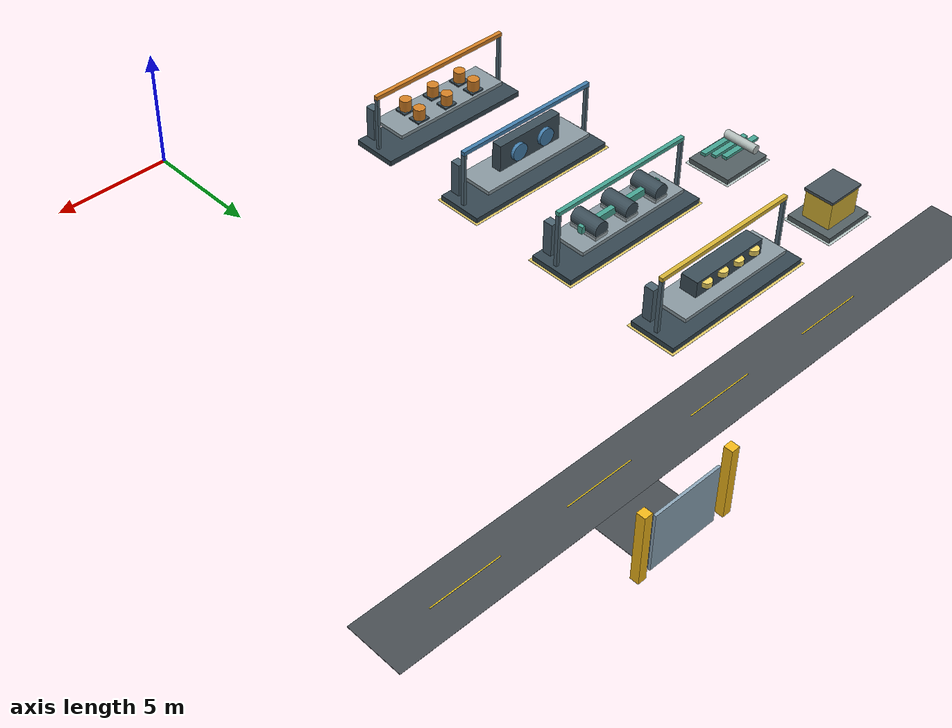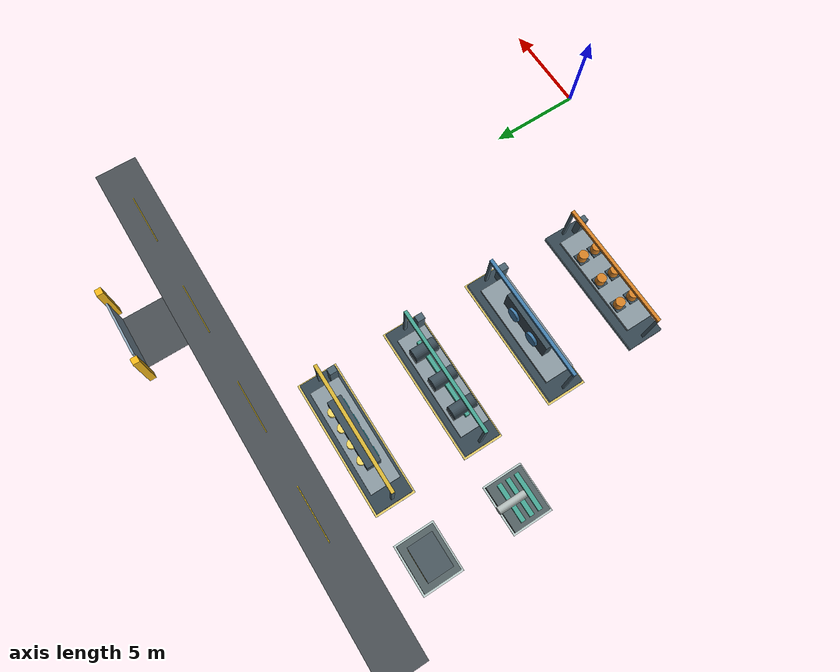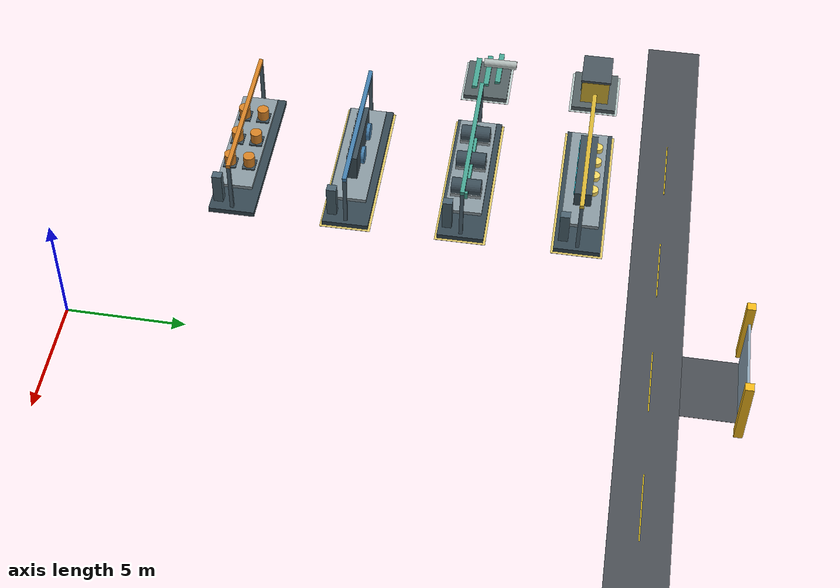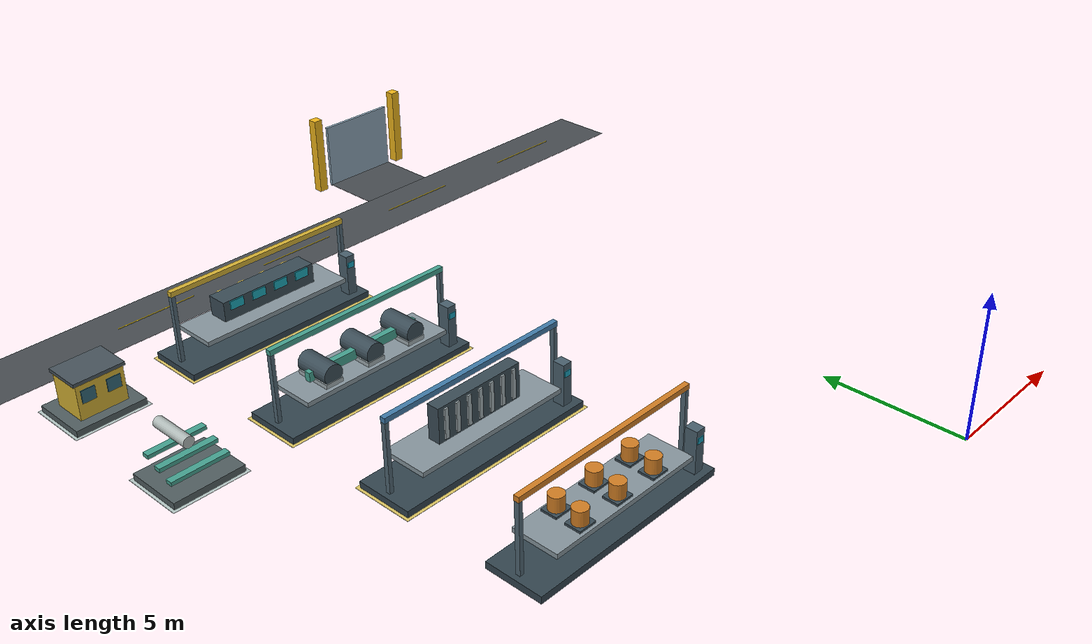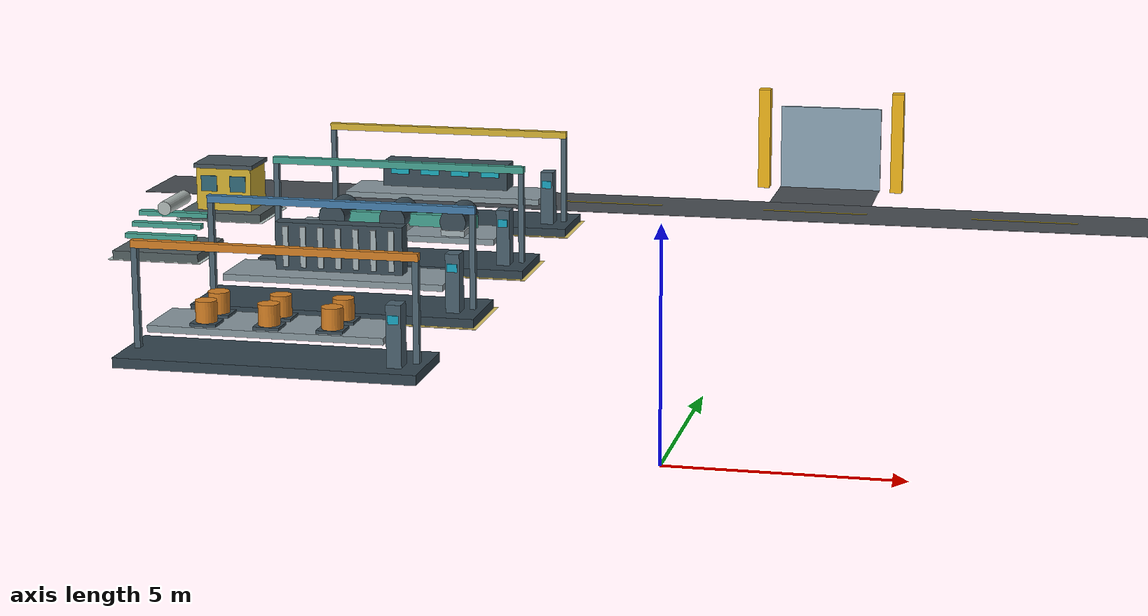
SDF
<sdf version="1.7">
 <world name="warehouse_layout_demo">
  <include><uri>model://sun</uri></include>
  <model name="north_access_road">
   <static>true</static>
   <pose>0.0 24.0 0.025 0 0 0</pose>
   <link name="marking">
    <visual name="visual">
     <geometry><box><size>90.0 2.4 0.012</size></box></geometry>
     <material><ambient>0.28 0.30 0.32 1</ambient><diffuse>0.28 0.30 0.32 1</diffuse></material>
    </visual>
   </link>
  </model>
  <model name="north_gate_approach">
   <static>true</static>
   <pose>0.0 26.35 0.025 0 0 0</pose>
   <link name="marking">
    <visual name="visual">
     <geometry><box><size>3.0 2.3 0.012</size></box></geometry>
     <material><ambient>0.28 0.30 0.32 1</ambient><diffuse>0.28 0.30 0.32 1</diffuse></material>
    </visual>
   </link>
  </model>
  <model name="north_gate_west_post">
   <static>true</static>
   <pose>-2.0 27.5 1.5 0 0 0</pose>
   <link name="link">
    <collision name="collision">
     <geometry><box><size>0.35 0.35 3.0</size></box></geometry>
     <surface><friction><ode><mu>0.9</mu><mu2>0.9</mu2></ode></friction></surface>
    </collision>
    <visual name="visual">
     <geometry><box><size>0.35 0.35 3.0</size></box></geometry>
     <material><ambient>0.95 0.72 0.10 1</ambient><diffuse>0.95 0.72 0.10 1</diffuse></material>
    </visual>
   </link>
  </model>
  <model name="north_gate_east_post">
   <static>true</static>
   <pose>2.0 27.5 1.5 0 0 0</pose>
   <link name="link">
    <collision name="collision">
     <geometry><box><size>0.35 0.35 3.0</size></box></geometry>
     <surface><friction><ode><mu>0.9</mu><mu2>0.9</mu2></ode></friction></surface>
    </collision>
    <visual name="visual">
     <geometry><box><size>0.35 0.35 3.0</size></box></geometry>
     <material><ambient>0.95 0.72 0.10 1</ambient><diffuse>0.95 0.72 0.10 1</diffuse></material>
    </visual>
   </link>
  </model>
  <model name="warehouse_north_gate">
   <static>false</static>
   <pose>0.0 27.5 1.25 0 0 0</pose>
   <link name="panel">
    <kinematic>true</kinematic>
    <gravity>false</gravity>
    <inertial>
     <mass>100.0</mass>
     <inertia><ixx>100.0</ixx><iyy>100.0</iyy><izz>100.0</izz><ixy>0</ixy><ixz>0</ixz><iyz>0</iyz></inertia>
    </inertial>
    <collision name="collision"><geometry><box><size>3.0 0.105 2.5</size></box></geometry></collision>
    <visual name="visual">
     <geometry><box><size>3.0 0.105 2.5</size></box></geometry>
     <material><ambient>0.55 0.65 0.72 1</ambient><diffuse>0.55 0.65 0.72 1</diffuse></material>
    </visual>
   </link>
  </model>
  <model name="part_stage_3_line_1_nw">
   <static>true</static>
   <pose>-10.0 5.5 0 0 0 0</pose>
   <link name="fixture">
    <collision name="collision">
     <pose>0 0 1.4 0 0 0</pose>
     <geometry><box><size>7.2 2.0 2.8</size></box></geometry>
    </collision>
    <visual name="machine_base">
     <pose>0 0 0.12 0 0 0</pose>
     <geometry><box><size>7.2 2.0 0.24</size></box></geometry>
     <material><ambient>0.20 0.27 0.31 1</ambient><diffuse>0.20 0.27 0.31 1</diffuse></material>
    </visual>
    <visual name="work_table">
     <pose>0 0 0.92 0 0 0</pose>
     <geometry><box><size>5.6 1.6 0.16</size></box></geometry>
     <material><ambient>0.53 0.59 0.62 1</ambient><diffuse>0.53 0.59 0.62 1</diffuse></material>
    </visual>
    <visual name="controller">
     <pose>3.05 -0.63 1.06 0 0 0</pose>
     <geometry><box><size>0.35 0.42 1.46</size></box></geometry>
     <material><ambient>0.29 0.38 0.43 1</ambient><diffuse>0.29 0.38 0.43 1</diffuse></material>
    </visual>
    <visual name="control_screen">
     <pose>3.05 -0.85 1.45 0 0 0</pose>
     <geometry><box><size>0.25 0.02 0.2</size></box></geometry>
     <material><ambient>0.09 0.64 0.75 1</ambient><diffuse>0.09 0.64 0.75 1</diffuse></material>
    </visual>
    <visual name="hoist_post_0">
     <pose>-3.35 0 1.4 0 0 0</pose>
     <geometry><box><size>0.14 0.16 2.72</size></box></geometry>
     <material><ambient>0.31 0.40 0.45 1</ambient><diffuse>0.31 0.40 0.45 1</diffuse></material>
    </visual>
    <visual name="hoist_post_1">
     <pose>3.35 0 1.4 0 0 0</pose>
     <geometry><box><size>0.14 0.16 2.72</size></box></geometry>
     <material><ambient>0.31 0.40 0.45 1</ambient><diffuse>0.31 0.40 0.45 1</diffuse></material>
    </visual>
    <visual name="hoist_beam">
     <pose>0 0 2.71 0 0 0</pose>
     <geometry><box><size>6.85 0.18 0.18</size></box></geometry>
     <material><ambient>0.83 0.50 0.14 1</ambient><diffuse>0.83 0.50 0.14 1</diffuse></material>
    </visual>
    <visual name="coil_0_0">
     <pose>-1.5 -0.42 1.24 0.0 0 0</pose>
     <geometry><cylinder><radius>0.25</radius><length>0.66</length></cylinder></geometry>
     <material><ambient>0.83 0.50 0.14 1</ambient><diffuse>0.83 0.50 0.14 1</diffuse></material>
    </visual>
    <visual name="spring_foot_0_0">
     <pose>-1.5 -0.42 1.02 0 0 0</pose>
     <geometry><box><size>0.62 0.56 0.1</size></box></geometry>
     <material><ambient>0.23 0.30 0.34 1</ambient><diffuse>0.23 0.30 0.34 1</diffuse></material>
    </visual>
    <visual name="coil_0_1">
     <pose>-1.5 0.42 1.24 0.0 0 0</pose>
     <geometry><cylinder><radius>0.25</radius><length>0.66</length></cylinder></geometry>
     <material><ambient>0.83 0.50 0.14 1</ambient><diffuse>0.83 0.50 0.14 1</diffuse></material>
    </visual>
    <visual name="spring_foot_0_1">
     <pose>-1.5 0.42 1.02 0 0 0</pose>
     <geometry><box><size>0.62 0.56 0.1</size></box></geometry>
     <material><ambient>0.23 0.30 0.34 1</ambient><diffuse>0.23 0.30 0.34 1</diffuse></material>
    </visual>
    <visual name="coil_1_0">
     <pose>0 -0.42 1.24 0.0 0 0</pose>
     <geometry><cylinder><radius>0.25</radius><length>0.66</length></cylinder></geometry>
     <material><ambient>0.83 0.50 0.14 1</ambient><diffuse>0.83 0.50 0.14 1</diffuse></material>
    </visual>
    <visual name="spring_foot_1_0">
     <pose>0 -0.42 1.02 0 0 0</pose>
     <geometry><box><size>0.62 0.56 0.1</size></box></geometry>
     <material><ambient>0.23 0.30 0.34 1</ambient><diffuse>0.23 0.30 0.34 1</diffuse></material>
    </visual>
    <visual name="coil_1_1">
     <pose>0 0.42 1.24 0.0 0 0</pose>
     <geometry><cylinder><radius>0.25</radius><length>0.66</length></cylinder></geometry>
     <material><ambient>0.83 0.50 0.14 1</ambient><diffuse>0.83 0.50 0.14 1</diffuse></material>
    </visual>
    <visual name="spring_foot_1_1">
     <pose>0 0.42 1.02 0 0 0</pose>
     <geometry><box><size>0.62 0.56 0.1</size></box></geometry>
     <material><ambient>0.23 0.30 0.34 1</ambient><diffuse>0.23 0.30 0.34 1</diffuse></material>
    </visual>
    <visual name="coil_2_0">
     <pose>1.5 -0.42 1.24 0.0 0 0</pose>
     <geometry><cylinder><radius>0.25</radius><length>0.66</length></cylinder></geometry>
     <material><ambient>0.83 0.50 0.14 1</ambient><diffuse>0.83 0.50 0.14 1</diffuse></material>
    </visual>
    <visual name="spring_foot_2_0">
     <pose>1.5 -0.42 1.02 0 0 0</pose>
     <geometry><box><size>0.62 0.56 0.1</size></box></geometry>
     <material><ambient>0.23 0.30 0.34 1</ambient><diffuse>0.23 0.30 0.34 1</diffuse></material>
    </visual>
    <visual name="coil_2_1">
     <pose>1.5 0.42 1.24 0.0 0 0</pose>
     <geometry><cylinder><radius>0.25</radius><length>0.66</length></cylinder></geometry>
     <material><ambient>0.83 0.50 0.14 1</ambient><diffuse>0.83 0.50 0.14 1</diffuse></material>
    </visual>
    <visual name="spring_foot_2_1">
     <pose>1.5 0.42 1.02 0 0 0</pose>
     <geometry><box><size>0.62 0.56 0.1</size></box></geometry>
     <material><ambient>0.23 0.30 0.34 1</ambient><diffuse>0.23 0.30 0.34 1</diffuse></material>
    </visual>
   </link>
  </model>
  <model name="part_stage_3_line_2_nw_pad">
   <static>true</static>
   <pose>-10.0 10.5 0.012 0 0 0</pose>
   <link name="marking">
    <visual name="visual">
     <geometry><box><size>7.4 2.2 0.012</size></box></geometry>
     <material><ambient>0.87 0.78 0.39 1</ambient><diffuse>0.87 0.78 0.39 1</diffuse></material>
    </visual>
   </link>
  </model>
  <model name="part_stage_3_line_2_nw">
   <static>true</static>
   <pose>-10.0 10.5 0 0 0 0</pose>
   <link name="fixture">
    <collision name="collision">
     <pose>0 0 1.4 0 0 0</pose>
     <geometry><box><size>7.2 2.0 2.8</size></box></geometry>
    </collision>
    <visual name="machine_base">
     <pose>0 0 0.12 0 0 0</pose>
     <geometry><box><size>7.2 2.0 0.24</size></box></geometry>
     <material><ambient>0.20 0.27 0.31 1</ambient><diffuse>0.20 0.27 0.31 1</diffuse></material>
    </visual>
    <visual name="work_table">
     <pose>0 0 0.92 0 0 0</pose>
     <geometry><box><size>5.6 1.6 0.16</size></box></geometry>
     <material><ambient>0.53 0.59 0.62 1</ambient><diffuse>0.53 0.59 0.62 1</diffuse></material>
    </visual>
    <visual name="controller">
     <pose>3.05 -0.63 1.06 0 0 0</pose>
     <geometry><box><size>0.35 0.42 1.46</size></box></geometry>
     <material><ambient>0.29 0.38 0.43 1</ambient><diffuse>0.29 0.38 0.43 1</diffuse></material>
    </visual>
    <visual name="control_screen">
     <pose>3.05 -0.85 1.45 0 0 0</pose>
     <geometry><box><size>0.25 0.02 0.2</size></box></geometry>
     <material><ambient>0.09 0.64 0.75 1</ambient><diffuse>0.09 0.64 0.75 1</diffuse></material>
    </visual>
    <visual name="hoist_post_0">
     <pose>-3.35 0 1.4 0 0 0</pose>
     <geometry><box><size>0.14 0.16 2.72</size></box></geometry>
     <material><ambient>0.31 0.40 0.45 1</ambient><diffuse>0.31 0.40 0.45 1</diffuse></material>
    </visual>
    <visual name="hoist_post_1">
     <pose>3.35 0 1.4 0 0 0</pose>
     <geometry><box><size>0.14 0.16 2.72</size></box></geometry>
     <material><ambient>0.31 0.40 0.45 1</ambient><diffuse>0.31 0.40 0.45 1</diffuse></material>
    </visual>
    <visual name="hoist_beam">
     <pose>0 0 2.71 0 0 0</pose>
     <geometry><box><size>6.85 0.18 0.18</size></box></geometry>
     <material><ambient>0.26 0.49 0.67 1</ambient><diffuse>0.26 0.49 0.67 1</diffuse></material>
    </visual>
    <visual name="radiator_frame">
     <pose>0 0 1.64 0 0 0</pose>
     <geometry><box><size>3.25 0.44 1.2</size></box></geometry>
     <material><ambient>0.23 0.30 0.34 1</ambient><diffuse>0.23 0.30 0.34 1</diffuse></material>
    </visual>
    <visual name="cooling_fin_0">
     <pose>-1.35 -0.25 1.64 0 0 0</pose>
     <geometry><box><size>0.14 0.05 1.02</size></box></geometry>
     <material><ambient>0.64 0.69 0.71 1</ambient><diffuse>0.64 0.69 0.71 1</diffuse></material>
    </visual>
    <visual name="cooling_fin_1">
     <pose>-0.9 -0.25 1.64 0 0 0</pose>
     <geometry><box><size>0.14 0.05 1.02</size></box></geometry>
     <material><ambient>0.64 0.69 0.71 1</ambient><diffuse>0.64 0.69 0.71 1</diffuse></material>
    </visual>
    <visual name="cooling_fin_2">
     <pose>-0.45 -0.25 1.64 0 0 0</pose>
     <geometry><box><size>0.14 0.05 1.02</size></box></geometry>
     <material><ambient>0.64 0.69 0.71 1</ambient><diffuse>0.64 0.69 0.71 1</diffuse></material>
    </visual>
    <visual name="cooling_fin_3">
     <pose>0 -0.25 1.64 0 0 0</pose>
     <geometry><box><size>0.14 0.05 1.02</size></box></geometry>
     <material><ambient>0.64 0.69 0.71 1</ambient><diffuse>0.64 0.69 0.71 1</diffuse></material>
    </visual>
    <visual name="cooling_fin_4">
     <pose>0.45 -0.25 1.64 0 0 0</pose>
     <geometry><box><size>0.14 0.05 1.02</size></box></geometry>
     <material><ambient>0.64 0.69 0.71 1</ambient><diffuse>0.64 0.69 0.71 1</diffuse></material>
    </visual>
    <visual name="cooling_fin_5">
     <pose>0.9 -0.25 1.64 0 0 0</pose>
     <geometry><box><size>0.14 0.05 1.02</size></box></geometry>
     <material><ambient>0.64 0.69 0.71 1</ambient><diffuse>0.64 0.69 0.71 1</diffuse></material>
    </visual>
    <visual name="cooling_fin_6">
     <pose>1.35 -0.25 1.64 0 0 0</pose>
     <geometry><box><size>0.14 0.05 1.02</size></box></geometry>
     <material><ambient>0.64 0.69 0.71 1</ambient><diffuse>0.64 0.69 0.71 1</diffuse></material>
    </visual>
    <visual name="cooling_fan_0">
     <pose>-0.73 0.35 1.65 1.57079632679 0 0</pose>
     <geometry><cylinder><radius>0.38</radius><length>0.15</length></cylinder></geometry>
     <material><ambient>0.26 0.49 0.67 1</ambient><diffuse>0.26 0.49 0.67 1</diffuse></material>
    </visual>
    <visual name="cooling_fan_1">
     <pose>0.73 0.35 1.65 1.57079632679 0 0</pose>
     <geometry><cylinder><radius>0.38</radius><length>0.15</length></cylinder></geometry>
     <material><ambient>0.26 0.49 0.67 1</ambient><diffuse>0.26 0.49 0.67 1</diffuse></material>
    </visual>
   </link>
  </model>
  <model name="part_stage_3_line_3_nw_pad">
   <static>true</static>
   <pose>-10.0 15.5 0.012 0 0 0</pose>
   <link name="marking">
    <visual name="visual">
     <geometry><box><size>7.4 2.2 0.012</size></box></geometry>
     <material><ambient>0.87 0.78 0.39 1</ambient><diffuse>0.87 0.78 0.39 1</diffuse></material>
    </visual>
   </link>
  </model>
  <model name="part_stage_3_line_3_nw">
   <static>true</static>
   <pose>-10.0 15.5 0 0 0 0</pose>
   <link name="fixture">
    <collision name="collision">
     <pose>0 0 1.4 0 0 0</pose>
     <geometry><box><size>7.2 2.0 2.8</size></box></geometry>
    </collision>
    <visual name="machine_base">
     <pose>0 0 0.12 0 0 0</pose>
     <geometry><box><size>7.2 2.0 0.24</size></box></geometry>
     <material><ambient>0.20 0.27 0.31 1</ambient><diffuse>0.20 0.27 0.31 1</diffuse></material>
    </visual>
    <visual name="work_table">
     <pose>0 0 0.92 0 0 0</pose>
     <geometry><box><size>5.6 1.6 0.16</size></box></geometry>
     <material><ambient>0.53 0.59 0.62 1</ambient><diffuse>0.53 0.59 0.62 1</diffuse></material>
    </visual>
    <visual name="controller">
     <pose>3.05 -0.63 1.06 0 0 0</pose>
     <geometry><box><size>0.35 0.42 1.46</size></box></geometry>
     <material><ambient>0.29 0.38 0.43 1</ambient><diffuse>0.29 0.38 0.43 1</diffuse></material>
    </visual>
    <visual name="control_screen">
     <pose>3.05 -0.85 1.45 0 0 0</pose>
     <geometry><box><size>0.25 0.02 0.2</size></box></geometry>
     <material><ambient>0.09 0.64 0.75 1</ambient><diffuse>0.09 0.64 0.75 1</diffuse></material>
    </visual>
    <visual name="hoist_post_0">
     <pose>-3.35 0 1.4 0 0 0</pose>
     <geometry><box><size>0.14 0.16 2.72</size></box></geometry>
     <material><ambient>0.31 0.40 0.45 1</ambient><diffuse>0.31 0.40 0.45 1</diffuse></material>
    </visual>
    <visual name="hoist_post_1">
     <pose>3.35 0 1.4 0 0 0</pose>
     <geometry><box><size>0.14 0.16 2.72</size></box></geometry>
     <material><ambient>0.31 0.40 0.45 1</ambient><diffuse>0.31 0.40 0.45 1</diffuse></material>
    </visual>
    <visual name="hoist_beam">
     <pose>0 0 2.71 0 0 0</pose>
     <geometry><box><size>6.85 0.18 0.18</size></box></geometry>
     <material><ambient>0.27 0.64 0.57 1</ambient><diffuse>0.27 0.64 0.57 1</diffuse></material>
    </visual>
    <visual name="pivot_beam">
     <pose>0 0 1.26 0 0 0</pose>
     <geometry><box><size>4.3 0.22 0.32</size></box></geometry>
     <material><ambient>0.27 0.64 0.57 1</ambient><diffuse>0.27 0.64 0.57 1</diffuse></material>
    </visual>
    <visual name="pivot_0">
     <pose>-1.65 0 1.36 1.57079632679 0 0</pose>
     <geometry><cylinder><radius>0.35</radius><length>1.28</length></cylinder></geometry>
     <material><ambient>0.23 0.30 0.34 1</ambient><diffuse>0.23 0.30 0.34 1</diffuse></material>
    </visual>
    <visual name="mount_0">
     <pose>-1.65 0 1.03 0 0 0</pose>
     <geometry><box><size>0.64 1.32 0.24</size></box></geometry>
     <material><ambient>0.64 0.69 0.71 1</ambient><diffuse>0.64 0.69 0.71 1</diffuse></material>
    </visual>
    <visual name="pivot_1">
     <pose>0 0 1.36 1.57079632679 0 0</pose>
     <geometry><cylinder><radius>0.35</radius><length>1.28</length></cylinder></geometry>
     <material><ambient>0.23 0.30 0.34 1</ambient><diffuse>0.23 0.30 0.34 1</diffuse></material>
    </visual>
    <visual name="mount_1">
     <pose>0 0 1.03 0 0 0</pose>
     <geometry><box><size>0.64 1.32 0.24</size></box></geometry>
     <material><ambient>0.64 0.69 0.71 1</ambient><diffuse>0.64 0.69 0.71 1</diffuse></material>
    </visual>
    <visual name="pivot_2">
     <pose>1.65 0 1.36 1.57079632679 0 0</pose>
     <geometry><cylinder><radius>0.35</radius><length>1.28</length></cylinder></geometry>
     <material><ambient>0.23 0.30 0.34 1</ambient><diffuse>0.23 0.30 0.34 1</diffuse></material>
    </visual>
    <visual name="mount_2">
     <pose>1.65 0 1.03 0 0 0</pose>
     <geometry><box><size>0.64 1.32 0.24</size></box></geometry>
     <material><ambient>0.64 0.69 0.71 1</ambient><diffuse>0.64 0.69 0.71 1</diffuse></material>
    </visual>
   </link>
  </model>
  <model name="parts_kit_2_line_3_nw_pad">
   <static>true</static>
   <pose>-16.5 15.5 0.012 0 0 0</pose>
   <link name="marking">
    <visual name="visual">
     <geometry><box><size>2.6 2.2 0.012</size></box></geometry>
     <material><ambient>0.72 0.79 0.78 1</ambient><diffuse>0.72 0.79 0.78 1</diffuse></material>
    </visual>
   </link>
  </model>
  <model name="parts_kit_2_line_3_nw">
   <static>true</static>
   <pose>-16.5 15.5 0 0 0 0</pose>
   <link name="fixture">
    <collision name="collision">
     <pose>0 0 0.9 0 0 0</pose>
     <geometry><box><size>2.4 2.0 1.8</size></box></geometry>
    </collision>
    <visual name="kit_frame">
     <pose>0 0 0.12 0 0 0</pose>
     <geometry><box><size>2.4 2.0 0.24</size></box></geometry>
     <material><ambient>0.32 0.37 0.38 1</ambient><diffuse>0.32 0.37 0.38 1</diffuse></material>
    </visual>
    <visual name="bed_panel_0">
     <pose>0 -0.52 0.58 0 0 0</pose>
     <geometry><box><size>1.96 0.24 0.13</size></box></geometry>
     <material><ambient>0.27 0.64 0.57 1</ambient><diffuse>0.27 0.64 0.57 1</diffuse></material>
    </visual>
    <visual name="bed_panel_1">
     <pose>0 0 0.78 0 0 0</pose>
     <geometry><box><size>1.96 0.24 0.13</size></box></geometry>
     <material><ambient>0.27 0.64 0.57 1</ambient><diffuse>0.27 0.64 0.57 1</diffuse></material>
    </visual>
    <visual name="bed_panel_2">
     <pose>0 0.52 0.98 0 0 0</pose>
     <geometry><box><size>1.96 0.24 0.13</size></box></geometry>
     <material><ambient>0.27 0.64 0.57 1</ambient><diffuse>0.27 0.64 0.57 1</diffuse></material>
    </visual>
    <visual name="lift_ram">
     <pose>0 0.54 1.28 1.57079632679 0 0</pose>
     <geometry><cylinder><radius>0.19</radius><length>1.5</length></cylinder></geometry>
     <material><ambient>0.69 0.73 0.72 1</ambient><diffuse>0.69 0.73 0.72 1</diffuse></material>
    </visual>
   </link>
  </model>
  <model name="part_stage_3_line_4_nw_pad">
   <static>true</static>
   <pose>-10.0 20.5 0.012 0 0 0</pose>
   <link name="marking">
    <visual name="visual">
     <geometry><box><size>7.4 2.2 0.012</size></box></geometry>
     <material><ambient>0.87 0.78 0.39 1</ambient><diffuse>0.87 0.78 0.39 1</diffuse></material>
    </visual>
   </link>
  </model>
  <model name="part_stage_3_line_4_nw">
   <static>true</static>
   <pose>-10.0 20.5 0 0 0 0</pose>
   <link name="fixture">
    <collision name="collision">
     <pose>0 0 1.4 0 0 0</pose>
     <geometry><box><size>7.2 2.0 2.8</size></box></geometry>
    </collision>
    <visual name="machine_base">
     <pose>0 0 0.12 0 0 0</pose>
     <geometry><box><size>7.2 2.0 0.24</size></box></geometry>
     <material><ambient>0.20 0.27 0.31 1</ambient><diffuse>0.20 0.27 0.31 1</diffuse></material>
    </visual>
    <visual name="work_table">
     <pose>0 0 0.92 0 0 0</pose>
     <geometry><box><size>5.6 1.6 0.16</size></box></geometry>
     <material><ambient>0.53 0.59 0.62 1</ambient><diffuse>0.53 0.59 0.62 1</diffuse></material>
    </visual>
    <visual name="controller">
     <pose>3.05 -0.63 1.06 0 0 0</pose>
     <geometry><box><size>0.35 0.42 1.46</size></box></geometry>
     <material><ambient>0.29 0.38 0.43 1</ambient><diffuse>0.29 0.38 0.43 1</diffuse></material>
    </visual>
    <visual name="control_screen">
     <pose>3.05 -0.85 1.45 0 0 0</pose>
     <geometry><box><size>0.25 0.02 0.2</size></box></geometry>
     <material><ambient>0.09 0.64 0.75 1</ambient><diffuse>0.09 0.64 0.75 1</diffuse></material>
    </visual>
    <visual name="hoist_post_0">
     <pose>-3.35 0 1.4 0 0 0</pose>
     <geometry><box><size>0.14 0.16 2.72</size></box></geometry>
     <material><ambient>0.31 0.40 0.45 1</ambient><diffuse>0.31 0.40 0.45 1</diffuse></material>
    </visual>
    <visual name="hoist_post_1">
     <pose>3.35 0 1.4 0 0 0</pose>
     <geometry><box><size>0.14 0.16 2.72</size></box></geometry>
     <material><ambient>0.31 0.40 0.45 1</ambient><diffuse>0.31 0.40 0.45 1</diffuse></material>
    </visual>
    <visual name="hoist_beam">
     <pose>0 0 2.71 0 0 0</pose>
     <geometry><box><size>6.85 0.18 0.18</size></box></geometry>
     <material><ambient>0.84 0.70 0.20 1</ambient><diffuse>0.84 0.70 0.20 1</diffuse></material>
    </visual>
    <visual name="dashboard">
     <pose>0 0 1.48 0 0 0</pose>
     <geometry><box><size>3.6 0.75 0.7</size></box></geometry>
     <material><ambient>0.23 0.30 0.34 1</ambient><diffuse>0.23 0.30 0.34 1</diffuse></material>
    </visual>
    <visual name="instrument_0">
     <pose>-1.3 -0.39 1.64 0 0 0</pose>
     <geometry><box><size>0.52 0.04 0.3</size></box></geometry>
     <material><ambient>0.10 0.67 0.74 1</ambient><diffuse>0.10 0.67 0.74 1</diffuse></material>
    </visual>
    <visual name="work_lamp_0">
     <pose>-1.3 0.4 1.6 0.0 0 0</pose>
     <geometry><cylinder><radius>0.22</radius><length>0.22</length></cylinder></geometry>
     <material><ambient>0.95 0.84 0.38 1</ambient><diffuse>0.95 0.84 0.38 1</diffuse></material>
    </visual>
    <visual name="instrument_1">
     <pose>-0.43 -0.39 1.64 0 0 0</pose>
     <geometry><box><size>0.52 0.04 0.3</size></box></geometry>
     <material><ambient>0.10 0.67 0.74 1</ambient><diffuse>0.10 0.67 0.74 1</diffuse></material>
    </visual>
    <visual name="work_lamp_1">
     <pose>-0.43 0.4 1.6 0.0 0 0</pose>
     <geometry><cylinder><radius>0.22</radius><length>0.22</length></cylinder></geometry>
     <material><ambient>0.95 0.84 0.38 1</ambient><diffuse>0.95 0.84 0.38 1</diffuse></material>
    </visual>
    <visual name="instrument_2">
     <pose>0.44 -0.39 1.64 0 0 0</pose>
     <geometry><box><size>0.52 0.04 0.3</size></box></geometry>
     <material><ambient>0.10 0.67 0.74 1</ambient><diffuse>0.10 0.67 0.74 1</diffuse></material>
    </visual>
    <visual name="work_lamp_2">
     <pose>0.44 0.4 1.6 0.0 0 0</pose>
     <geometry><cylinder><radius>0.22</radius><length>0.22</length></cylinder></geometry>
     <material><ambient>0.95 0.84 0.38 1</ambient><diffuse>0.95 0.84 0.38 1</diffuse></material>
    </visual>
    <visual name="instrument_3">
     <pose>1.31 -0.39 1.64 0 0 0</pose>
     <geometry><box><size>0.52 0.04 0.3</size></box></geometry>
     <material><ambient>0.10 0.67 0.74 1</ambient><diffuse>0.10 0.67 0.74 1</diffuse></material>
    </visual>
    <visual name="work_lamp_3">
     <pose>1.31 0.4 1.6 0.0 0 0</pose>
     <geometry><cylinder><radius>0.22</radius><length>0.22</length></cylinder></geometry>
     <material><ambient>0.95 0.84 0.38 1</ambient><diffuse>0.95 0.84 0.38 1</diffuse></material>
    </visual>
   </link>
  </model>
  <model name="parts_kit_2_line_4_nw_pad">
   <static>true</static>
   <pose>-16.5 20.5 0.012 0 0 0</pose>
   <link name="marking">
    <visual name="visual">
     <geometry><box><size>2.6 2.2 0.012</size></box></geometry>
     <material><ambient>0.72 0.79 0.78 1</ambient><diffuse>0.72 0.79 0.78 1</diffuse></material>
    </visual>
   </link>
  </model>
  <model name="parts_kit_2_line_4_nw">
   <static>true</static>
   <pose>-16.5 20.5 0 0 0 0</pose>
   <link name="fixture">
    <collision name="collision">
     <pose>0 0 0.9 0 0 0</pose>
     <geometry><box><size>2.4 2.0 1.8</size></box></geometry>
    </collision>
    <visual name="kit_frame">
     <pose>0 0 0.12 0 0 0</pose>
     <geometry><box><size>2.4 2.0 0.24</size></box></geometry>
     <material><ambient>0.32 0.37 0.38 1</ambient><diffuse>0.32 0.37 0.38 1</diffuse></material>
    </visual>
    <visual name="cab_module">
     <pose>0 0 0.8 0 0 0</pose>
     <geometry><box><size>1.62 1.25 1.35</size></box></geometry>
     <material><ambient>0.84 0.70 0.20 1</ambient><diffuse>0.84 0.70 0.20 1</diffuse></material>
    </visual>
    <visual name="cab_window_0">
     <pose>-0.43 -0.64 1.02 0 0 0</pose>
     <geometry><box><size>0.47 0.03 0.45</size></box></geometry>
     <material><ambient>0.19 0.41 0.47 1</ambient><diffuse>0.19 0.41 0.47 1</diffuse></material>
    </visual>
    <visual name="cab_window_1">
     <pose>0.43 -0.64 1.02 0 0 0</pose>
     <geometry><box><size>0.47 0.03 0.45</size></box></geometry>
     <material><ambient>0.19 0.41 0.47 1</ambient><diffuse>0.19 0.41 0.47 1</diffuse></material>
    </visual>
    <visual name="cab_roof">
     <pose>0 0 1.52 0 0 0</pose>
     <geometry><box><size>1.75 1.34 0.12</size></box></geometry>
     <material><ambient>0.28 0.33 0.36 1</ambient><diffuse>0.28 0.33 0.36 1</diffuse></material>
    </visual>
   </link>
  </model>
  <model name="road_dashed_line_6">
   <static>true</static>
   <pose>-12 24.0 0.045 0 0 0</pose>
   <link name="marking">
    <visual name="visual">
     <geometry><box><size>3.0 0.042 0.012</size></box></geometry>
     <material><ambient>0.96 0.82 0.12 1</ambient><diffuse>0.96 0.82 0.12 1</diffuse></material>
    </visual>
   </link>
  </model>
  <model name="road_dashed_line_7">
   <static>true</static>
   <pose>-6 24.0 0.045 0 0 0</pose>
   <link name="marking">
    <visual name="visual">
     <geometry><box><size>3.0 0.042 0.012</size></box></geometry>
     <material><ambient>0.96 0.82 0.12 1</ambient><diffuse>0.96 0.82 0.12 1</diffuse></material>
    </visual>
   </link>
  </model>
  <model name="road_dashed_line_8">
   <static>true</static>
   <pose>0 24.0 0.045 0 0 0</pose>
   <link name="marking">
    <visual name="visual">
     <geometry><box><size>3.0 0.042 0.012</size></box></geometry>
     <material><ambient>0.96 0.82 0.12 1</ambient><diffuse>0.96 0.82 0.12 1</diffuse></material>
    </visual>
   </link>
  </model>
  <model name="road_dashed_line_9">
   <static>true</static>
   <pose>6 24.0 0.045 0 0 0</pose>
   <link name="marking">
    <visual name="visual">
     <geometry><box><size>3.0 0.042 0.012</size></box></geometry>
     <material><ambient>0.96 0.82 0.12 1</ambient><diffuse>0.96 0.82 0.12 1</diffuse></material>
    </visual>
   </link>
  </model>
 </world>
</sdf>
